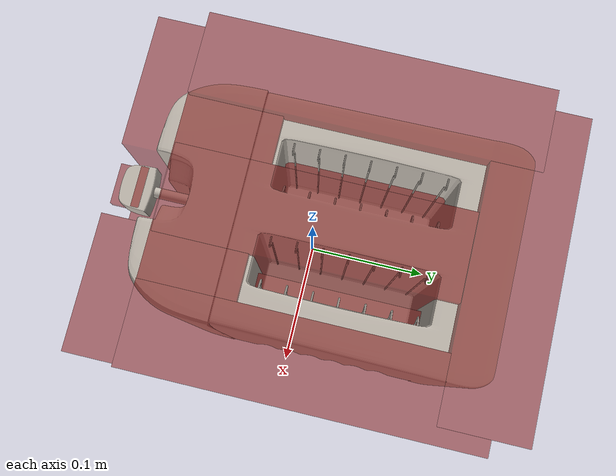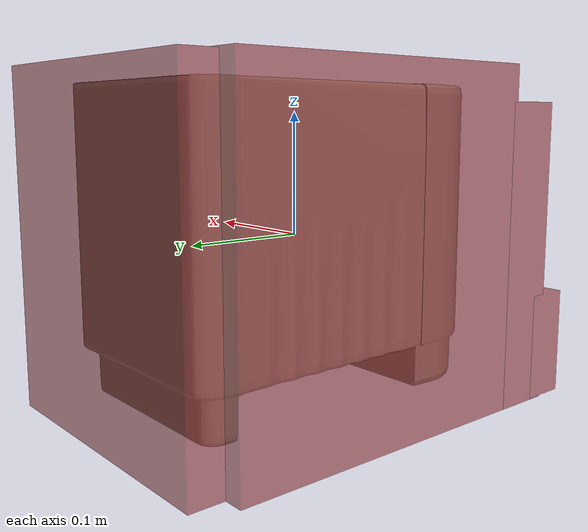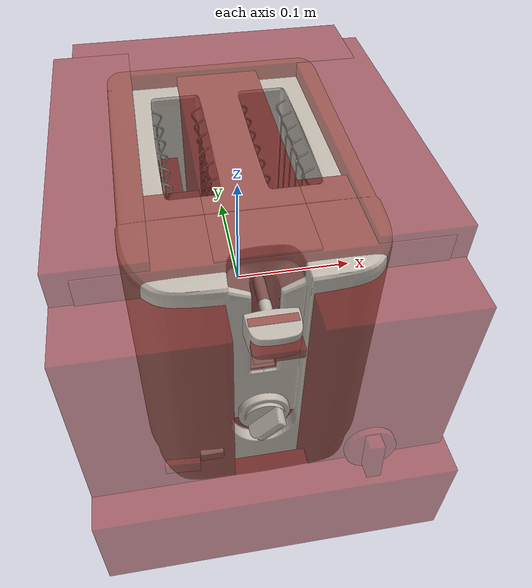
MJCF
<?xml version='1.0' encoding='UTF-8'?>
<mujoco model="model">
  <option timestep="0.002" gravity="0.0 0.0 -9.81"/>
  <compiler angle="radian"/>
  <asset>
    <mesh file="visuals/button_cancel.obj" name="button_cancel_vis"/>
    <mesh file="visuals/knob_doneness.obj" name="knob_doneness_vis"/>
    <mesh file="visuals/lever.obj" name="lever_vis"/>
    <mesh file="visuals/Body001.obj" name="Body001_vis"/>
    <mesh file="visuals/Body002.obj" name="Body002_vis"/>
    <texture file="visuals/T_BC001.png" name="Body001_material" type="2d"/>
    <material name="Body001_material" rgba="1 1 1 1.0" texture="Body001_material" shininess="0.4472135901451111" specular="0.3103448502657381"/>
    <texture file="visuals/T_BC001.png" name="button_cancel_material" type="2d"/>
    <material name="button_cancel_material" rgba="1 1 1 1.0" texture="button_cancel_material" shininess="0.4472135901451111" specular="0.3103448502657381"/>
    <texture file="visuals/T_BC001.png" name="knob_doneness_material" type="2d"/>
    <material name="knob_doneness_material" rgba="1 1 1 1.0" texture="knob_doneness_material" shininess="0.4472135901451111" specular="0.3103448502657381"/>
    <texture file="visuals/T_BC001.png" name="lever_material" type="2d"/>
    <material name="lever_material" rgba="1 1 1 1.0" texture="lever_material" shininess="0.4472135901451111" specular="0.3103448502657381"/>
    <texture file="visuals/T_BC001.png" name="Body002_material" type="2d"/>
    <material name="Body002_material" rgba="1 1 1 1.0" texture="Body002_material" shininess="0.4472135901451111" specular="2"/>
  </asset>
  <default>
    <default class="visual">
      <geom conaffinity="0" contype="0" group="1" type="mesh"/>
    </default>
    <default class="collision">
      <geom group="0" rgba="0.5 0 0 0.5" density="1.0" solref="0.004 1" solimp="0.998 0.998 0.001"/>
    </default>
    <default class="spawn">
      <geom group="0" rgba="1 1 1 0.5" contype="0" conaffinity="0"/>
      <site group="0" rgba="1 1 1 0.5"/>
    </default>
    <default class="region">
      <geom group="1" conaffinity="0" contype="0" rgba="0 1 0 0" mass="0"/>
    </default>
  </default>
  <worldbody>
    <body>
      <body name="object">
        <geom mesh="Body001_vis" type="mesh" solimp="0.998 0.998 0.001" solref="0.001 1" friction="0.95 0.3 0.1" class="visual" material="Body001_material"/>
        <geom type="box" pos="-0.10345453 0.02154973 -0.00157377" size="0.03221338242292404 0.13385793566703796 0.13836859166622162" quat="1.0 0.0 0.0 0.0" class="collision"/>
        <geom type="box" pos="0.10399002 0.02154973 -0.00233186" size="0.03211294114589691 0.13385801017284393 0.13761071860790253" quat="1.0 0.0 0.0 0.0" class="collision"/>
        <geom type="box" pos="0.00169801 0.14998863 -0.00208952" size="0.12160955369472504 0.03326985612511635 0.13785582780838013" quat="1.0 0.0 0.0 0.0" class="collision"/>
        <geom type="box" pos="0.00169802 -0.07643856 -0.00523132" size="0.12160954624414444 0.037079066038131714 0.1347140371799469" quat="1.0 0.0 0.0 0.0" class="collision"/>
        <geom type="box" pos="0.00140786 0.02154973 0.04954325" size="0.03414381295442581 0.13385890424251556 0.08181669563055038" quat="1.0 0.0 0.0 0.0" class="collision"/>
        <geom type="box" pos="-0.00038940 0.02154973 -0.08779950" size="0.07910510897636414 0.1401977688074112 0.05210856720805168" quat="1.0 0.0 0.0 0.0" class="collision"/>
        <geom type="box" pos="-0.08218519 -0.13341151 -0.01581942" size="0.05375341325998306 0.024923771619796753 0.12403124570846558" quat="1.0 0.0 0.0 0.0" class="collision"/>
        <geom type="box" pos="0.00169802 -0.16432453 -0.09483801" size="0.1378471851348877 0.019114144146442413 0.04403212293982506" quat="1.0 0.0 0.0 0.0" class="collision"/>
        <geom type="box" pos="0.08149449 -0.13341154 -0.01581940" size="0.053583789616823196 0.024923808872699738 0.1240314468741417" quat="1.0 0.0 0.0 0.0" class="collision"/>
        <body name="button_cancel">
          <joint axis="0.09770321100950241 0.986335277557373 -0.13265320658683777" pos="-0.06616200 -0.17090649 -0.00005214" limited="true" name="button_cancel_joint" range="0.0 0.0015" type="slide" damping="1" frictionloss="1" armature=".01" stiffness="0.2" springref="-0.1"/>
          <geom mesh="button_cancel_vis" type="mesh" solimp="0.998 0.998 0.001" solref="0.001 1" friction="0.95 0.3 0.1" class="visual" material="button_cancel_material"/>
          <geom class="collision" type="box" pos="-0.06623801 -0.17168305 -0.00005484" size="0.011931066401302814 0.002311410615220666 0.0043693301267921925" quat="0.9978824853897095 -0.0529823899269104 -0.0020003479439765215 -0.03767504170536995" name="button_cancel_main"/>
        </body>
        <body name="knob_doneness">
          <joint axis="0.0 0.9935271143913269 -0.11359558254480362" pos="0.06588709 -0.17863543 -0.00656316" limited="true" name="knob_doneness_joint" range="0.0 5.235987755982989" type="hinge" damping="0.05" frictionloss="0.1" armature="0.001"/>
          <geom mesh="knob_doneness_vis" type="mesh" solimp="0.998 0.998 0.001" solref="0.001 1" friction="0.95 0.3 0.1" class="visual" material="knob_doneness_material"/>
          <geom type="cylinder" pos="0.06547928 -0.17595727 -0.00684146" size="0.01848733052611351 0.002492166357114911" quat="0.745511531829834 0.666492760181427 0.0 0.0" class="collision"/>
          <geom class="collision" type="box" pos="0.06524915 -0.18338762 -0.00530410" size="0.005110322032123804 0.006326127797365189 0.016014806926250458" quat="0.997992992401123 -0.06332430243492126 -0.0 0.0" name="knob_doneness_main"/>
        </body>
        <body name="lever">
          <joint axis="0.0 0.0 -1.0" pos="0.00015731 -0.14211422 0.09286828" limited="true" name="lever_joint" range="0.0 0.055" type="slide" damping="1" frictionloss="1" armature=".01" stiffness="1.5" springref="-0.5"/>
          <geom class="region" name="reg_slotR" type="box" pos="0.05382809 0.038846864999999994 0.144391585" size="0.01403455 0.077405865 0.08276836500000001"/>
          <geom class="region" name="reg_slotL" type="box" pos="-0.05333501 0.038846864999999994 0.144391585" size="0.014452450000000006 0.077405865 0.08276836500000001"/>
          <geom mesh="lever_vis" type="mesh" solimp="0.998 0.998 0.001" solref="0.001 1" friction="0.95 0.3 0.1" class="visual" material="lever_material"/>
          <geom class="collision" type="box" pos="0.00015731 -0.14677782 0.08934315" size="0.016314776614308357 0.012130996212363243 0.003923389595001936" quat="1.0 0.0 0.0 0.0" name="lever_handle"/>
          <geom type="box" pos="0.00015731 -0.13776698 0.09625904" size="0.016314787790179253 0.003120197681710124 0.003923393785953522" quat="1.0 0.0 0.0 0.0" class="collision"/>
          <geom class="collision" type="box" pos="0.05382046 0.03827729 0.06035427" size="0.01425000000745058 0.07443460077047348 0.001251728623174131" quat="1.0 0.0 0.0 0.0" name="slotR_floor"/>
          <geom class="collision" type="box" pos="-0.05323938 0.03827729 0.06035427" size="0.01425000000745058 0.07443460077047348 0.001251729903742671" quat="1.0 0.0 0.0 0.0" name="slotL_floor"/>
        </body>
        <body name="Body002">
          <geom mesh="Body002_vis" type="mesh" solimp="0.998 0.998 0.001" solref="0.001 1" friction="0.95 0.3 0.1" class="visual" material="Body002_material"/>
        </body>
        <geom class="region" name="reg_main" type="box" pos="4.999999997368221e-09 0.0013854749999999971 2.500000000071889e-08" size="0.136339545 0.190879475 0.13979236499999997"/>
      </body>
    </body>
  </worldbody>
  <actuator>
    <motor name="button_cancel_joint_actuator" joint="button_cancel_joint" gear="0.5"/>
    <motor name="knob_doneness_joint_actuator" joint="knob_doneness_joint" gear="10"/>
    <motor name="lever_joint_actuator" joint="lever_joint" gear="5"/>
  </actuator>
</mujoco>
